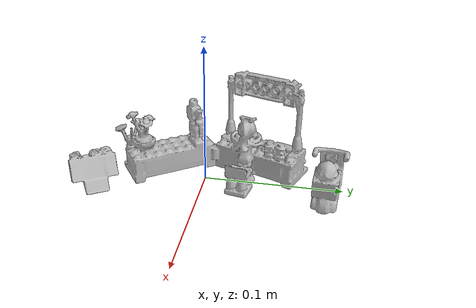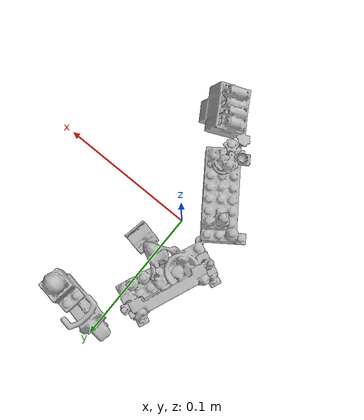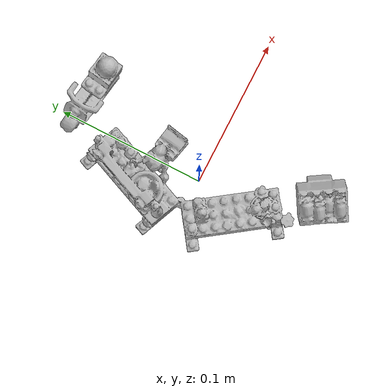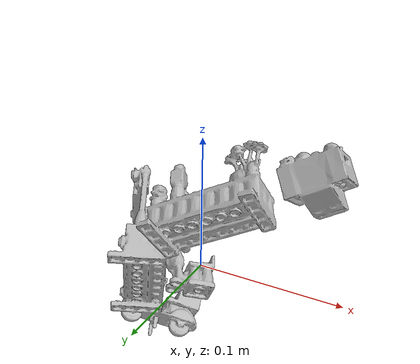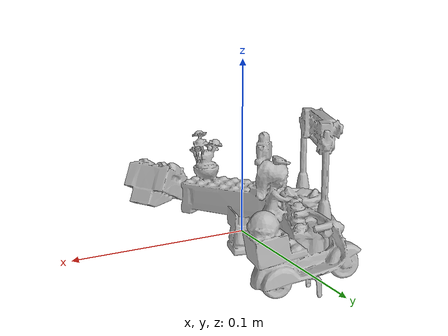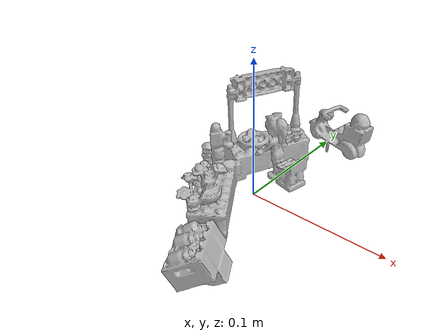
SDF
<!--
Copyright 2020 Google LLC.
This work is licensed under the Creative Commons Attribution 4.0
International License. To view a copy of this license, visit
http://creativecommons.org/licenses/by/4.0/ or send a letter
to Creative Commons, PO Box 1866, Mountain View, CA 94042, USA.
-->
<?xml version="1.0" ?>
<sdf version="1.6">
  <model name="Lego_Friends_Mia">
    <link name="link_0">
      <visual name="visual">
        <geometry>
          <mesh>
            <uri>meshes/model.obj</uri>
          </mesh>
        </geometry>
      </visual>
      <collision name="collision_0">
        <geometry>
          <mesh>
            <uri>meshes/model.obj</uri>
          </mesh>
        </geometry>
      </collision>
    </link>
  </model>
</sdf>
